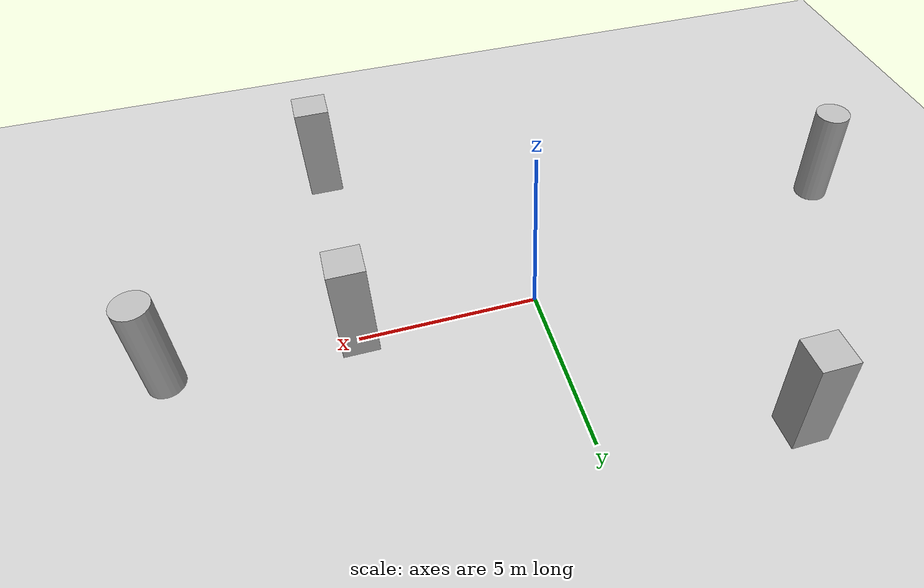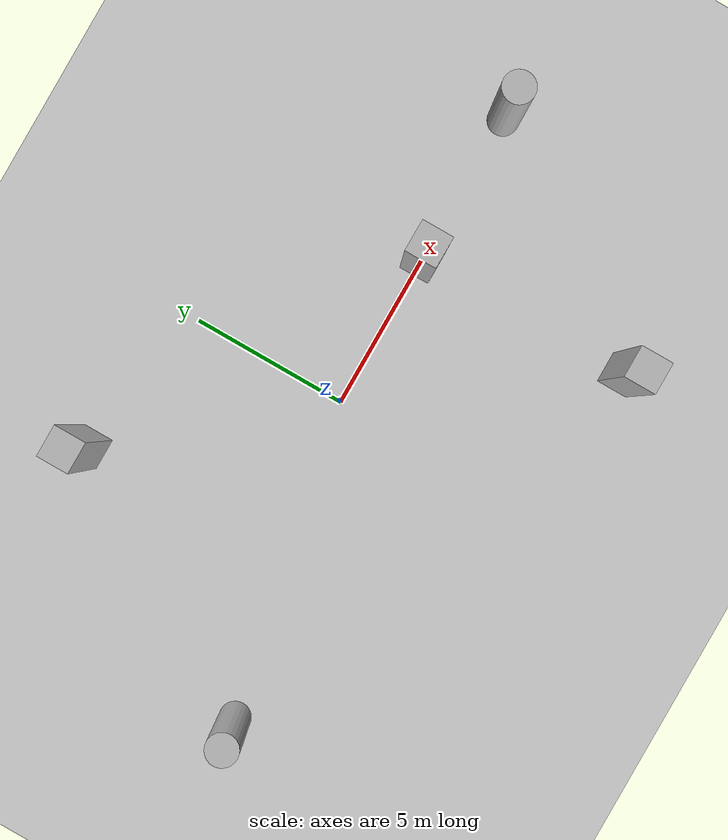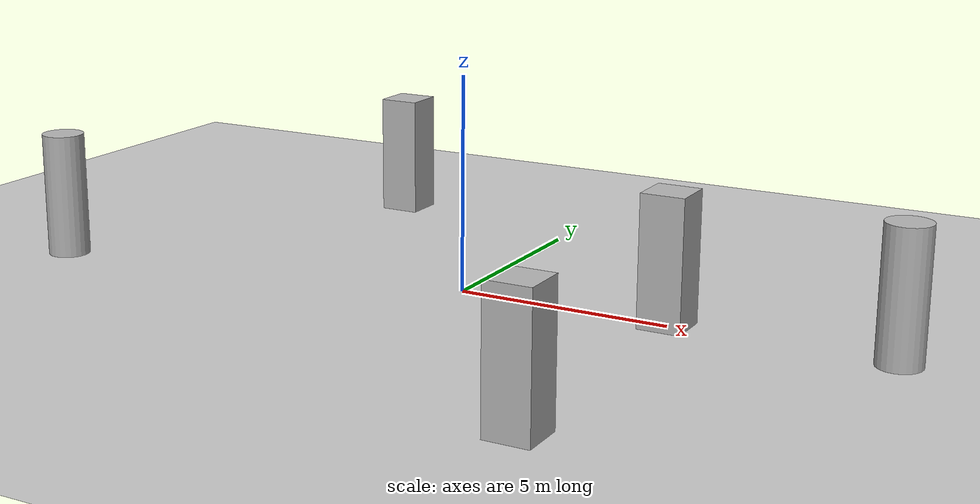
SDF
<sdf version="1.6">
 <world name="practice_world">
  <include><uri>model://sun</uri></include>
  <include><uri>model://ground_plane</uri></include>
  <physics name="default_physics" default="0" type="ode">
   <gravity>0 0 -9.8066</gravity>
   <ode>
    <solver><type>quick</type><iters>10</iters><sor>1.3</sor></solver>
    <constraints>
     <cfm>0</cfm>
     <erp>0.2</erp>
     <contact_max_correcting_vel>100</contact_max_correcting_vel>
     <contact_surface_layer>0.001</contact_surface_layer>
    </constraints>
   </ode>
   <max_step_size>0.004</max_step_size>
   <real_time_factor>1</real_time_factor>
   <real_time_update_rate>250</real_time_update_rate>
  </physics>
  <model name="obstacle_test1_1">
   <static>true</static>
   <pose>5 0 1.5 0 0 0</pose>
   <link name="link">
    <collision name="collision"><geometry><box><size>1 1 3</size></box></geometry></collision>
    <visual name="visual"><geometry><box><size>1 1 3</size></box></geometry></visual>
   </link>
  </model>
  <model name="obstacle_test1_2">
   <static>true</static>
   <pose>-5 6 1.5 0 0 0</pose>
   <link name="link">
    <collision name="collision"><geometry><box><size>1 1 3</size></box></geometry></collision>
    <visual name="visual"><geometry><box><size>1 1 3</size></box></geometry></visual>
   </link>
  </model>
  <model name="obstacle_test1_3">
   <static>true</static>
   <pose>10 0 1.5 0 0 0</pose>
   <link name="link">
    <collision name="collision">
     <geometry><cylinder><radius>0.5</radius><length>3</length></cylinder></geometry>
    </collision>
    <visual name="visual">
     <geometry><cylinder><radius>0.5</radius><length>3</length></cylinder></geometry>
    </visual>
   </link>
  </model>
  <model name="obstacle_test1_4">
   <static>true</static>
   <pose>5 -7 1.5 0 0 0</pose>
   <link name="link">
    <collision name="collision"><geometry><box><size>1 1 3</size></box></geometry></collision>
    <visual name="visual"><geometry><box><size>1 1 3</size></box></geometry></visual>
   </link>
  </model>
  <model name="obstacle_test1_5">
   <static>true</static>
   <pose>-10 -2 1.5 0 0 0</pose>
   <link name="link">
    <collision name="collision">
     <geometry><cylinder><radius>0.5</radius><length>3</length></cylinder></geometry>
    </collision>
    <visual name="visual">
     <geometry><cylinder><radius>0.5</radius><length>3</length></cylinder></geometry>
    </visual>
   </link>
  </model>
 </world>
</sdf>
